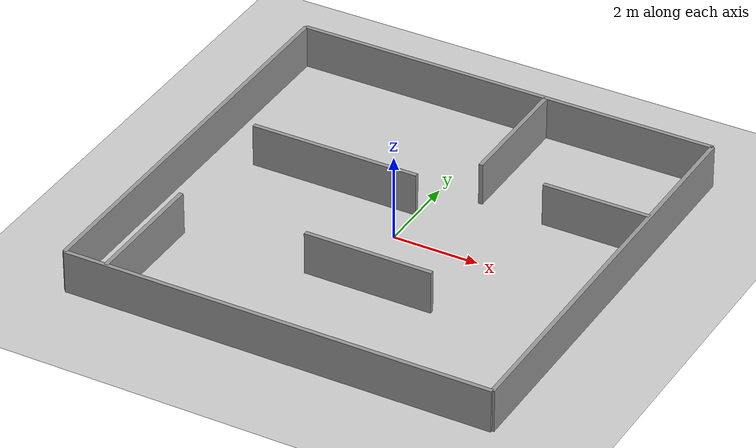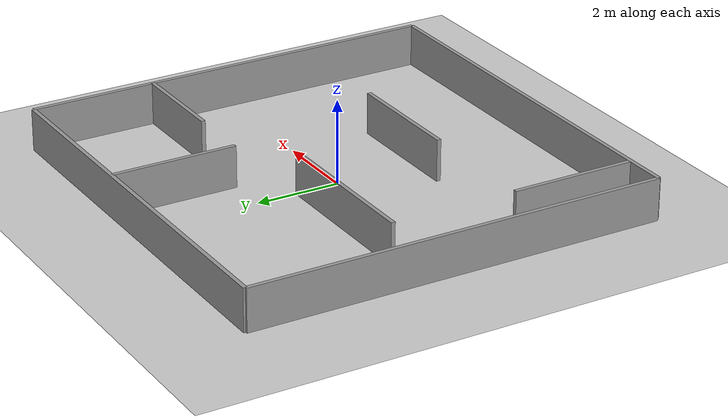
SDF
<sdf version='1.7'>
  <world name='default'>
    <light name='sun' type='directional'>
      <cast_shadows>1</cast_shadows>
      <pose>0 0 10 0 -0 0</pose>
      <diffuse>0.8 0.8 0.8 1</diffuse>
      <specular>0.2 0.2 0.2 1</specular>
      <attenuation>
        <range>1000</range>
        <constant>0.9</constant>
        <linear>0.01</linear>
        <quadratic>0.001</quadratic>
      </attenuation>
      <direction>-0.5 0.1 -0.9</direction>
      <spot>
        <inner_angle>0</inner_angle>
        <outer_angle>0</outer_angle>
        <falloff>0</falloff>
      </spot>
    </light>
    <model name='ground_plane'>
      <static>1</static>
      <link name='link'>
        <collision name='collision'>
          <geometry>
            <plane>
              <normal>0 0 1</normal>
              <size>100 100</size>
            </plane>
          </geometry>
          <surface>
            <contact>
              <collide_bitmask>65535</collide_bitmask>
              <ode/>
            </contact>
            <friction>
              <ode>
                <mu>100</mu>
                <mu2>50</mu2>
              </ode>
              <torsional>
                <ode/>
              </torsional>
            </friction>
            <bounce/>
          </surface>
          <max_contacts>10</max_contacts>
        </collision>
        <visual name='visual'>
          <cast_shadows>0</cast_shadows>
          <geometry>
            <plane>
              <normal>0 0 1</normal>
              <size>100 100</size>
            </plane>
          </geometry>
          <material>
            <script>
              <uri>file://media/materials/scripts/gazebo.material</uri>
              <name>Gazebo/Grey</name>
            </script>
          </material>
        </visual>
        <self_collide>0</self_collide>
        <enable_wind>0</enable_wind>
        <kinematic>0</kinematic>
      </link>
    </model>
    <gravity>0 0 -9.8</gravity>
    <magnetic_field>6e-06 2.3e-05 -4.2e-05</magnetic_field>
    <atmosphere type='adiabatic'/>
    <physics type='ode'>
      <max_step_size>0.001</max_step_size>
      <real_time_factor>1</real_time_factor>
      <real_time_update_rate>1000</real_time_update_rate>
    </physics>
    <scene>
      <ambient>0.4 0.4 0.4 1</ambient>
      <background>0.7 0.7 0.7 1</background>
      <shadows>1</shadows>
    </scene>
    <wind/>
    <spherical_coordinates>
      <surface_model>EARTH_WGS84</surface_model>
      <latitude_deg>0</latitude_deg>
      <longitude_deg>0</longitude_deg>
      <elevation>0</elevation>
      <heading_deg>0</heading_deg>
    </spherical_coordinates>
    <model name='border_bottom'>
      <static>1</static>
      <pose>0 -5 0.5 0 -0 0</pose>
      <link name='link'>
        <inertial>
          <mass>1</mass>
          <inertia>
            <ixx>0.166667</ixx>
            <ixy>0</ixy>
            <ixz>0</ixz>
            <iyy>0.166667</iyy>
            <iyz>0</iyz>
            <izz>0.166667</izz>
          </inertia>
          <pose>0 0 0 0 -0 0</pose>
        </inertial>
        <collision name='collision'>
          <geometry>
            <box>
              <size>10 0.1 1</size>
            </box>
          </geometry>
          <max_contacts>10</max_contacts>
          <surface>
            <contact>
              <ode/>
            </contact>
            <bounce/>
            <friction>
              <torsional>
                <ode/>
              </torsional>
              <ode/>
            </friction>
          </surface>
        </collision>
        <visual name='visual'>
          <geometry>
            <box>
              <size>10 0.1 1</size>
            </box>
          </geometry>
          <material>
            <script>
              <name>Gazebo/Grey</name>
              <uri>file://media/materials/scripts/gazebo.material</uri>
            </script>
          </material>
        </visual>
        <self_collide>0</self_collide>
        <enable_wind>0</enable_wind>
        <kinematic>0</kinematic>
      </link>
    </model>
    <model name='border_left'>
      <static>1</static>
      <pose>-5 0 0.5 0 -0 0</pose>
      <link name='link'>
        <inertial>
          <mass>1</mass>
          <inertia>
            <ixx>0.166667</ixx>
            <ixy>0</ixy>
            <ixz>0</ixz>
            <iyy>0.166667</iyy>
            <iyz>0</iyz>
            <izz>0.166667</izz>
          </inertia>
          <pose>0 0 0 0 -0 0</pose>
        </inertial>
        <collision name='collision'>
          <geometry>
            <box>
              <size>0.1 10 1</size>
            </box>
          </geometry>
          <max_contacts>10</max_contacts>
          <surface>
            <contact>
              <ode/>
            </contact>
            <bounce/>
            <friction>
              <torsional>
                <ode/>
              </torsional>
              <ode/>
            </friction>
          </surface>
        </collision>
        <visual name='visual'>
          <geometry>
            <box>
              <size>0.1 10 1</size>
            </box>
          </geometry>
          <material>
            <script>
              <name>Gazebo/Grey</name>
              <uri>file://media/materials/scripts/gazebo.material</uri>
            </script>
          </material>
        </visual>
        <self_collide>0</self_collide>
        <enable_wind>0</enable_wind>
        <kinematic>0</kinematic>
      </link>
    </model>
    <model name='border_right'>
      <static>1</static>
      <pose>5 0 0.5 0 -0 0</pose>
      <link name='link'>
        <inertial>
          <mass>1</mass>
          <inertia>
            <ixx>0.166667</ixx>
            <ixy>0</ixy>
            <ixz>0</ixz>
            <iyy>0.166667</iyy>
            <iyz>0</iyz>
            <izz>0.166667</izz>
          </inertia>
          <pose>0 0 0 0 -0 0</pose>
        </inertial>
        <collision name='collision'>
          <geometry>
            <box>
              <size>0.1 10 1</size>
            </box>
          </geometry>
          <max_contacts>10</max_contacts>
          <surface>
            <contact>
              <ode/>
            </contact>
            <bounce/>
            <friction>
              <torsional>
                <ode/>
              </torsional>
              <ode/>
            </friction>
          </surface>
        </collision>
        <visual name='visual'>
          <geometry>
            <box>
              <size>0.1 10 1</size>
            </box>
          </geometry>
          <material>
            <script>
              <name>Gazebo/Grey</name>
              <uri>file://media/materials/scripts/gazebo.material</uri>
            </script>
          </material>
        </visual>
        <self_collide>0</self_collide>
        <enable_wind>0</enable_wind>
        <kinematic>0</kinematic>
      </link>
    </model>
    <model name='border_top'>
      <static>1</static>
      <pose>0 5 0.5 0 -0 0</pose>
      <link name='link'>
        <inertial>
          <mass>1</mass>
          <inertia>
            <ixx>0.166667</ixx>
            <ixy>0</ixy>
            <ixz>0</ixz>
            <iyy>0.166667</iyy>
            <iyz>0</iyz>
            <izz>0.166667</izz>
          </inertia>
          <pose>0 0 0 0 -0 0</pose>
        </inertial>
        <collision name='collision'>
          <geometry>
            <box>
              <size>10 0.1 1</size>
            </box>
          </geometry>
          <max_contacts>10</max_contacts>
          <surface>
            <contact>
              <ode/>
            </contact>
            <bounce/>
            <friction>
              <torsional>
                <ode/>
              </torsional>
              <ode/>
            </friction>
          </surface>
        </collision>
        <visual name='visual'>
          <geometry>
            <box>
              <size>10 0.1 1</size>
            </box>
          </geometry>
          <material>
            <script>
              <name>Gazebo/Grey</name>
              <uri>file://media/materials/scripts/gazebo.material</uri>
            </script>
          </material>
        </visual>
        <self_collide>0</self_collide>
        <enable_wind>0</enable_wind>
        <kinematic>0</kinematic>
      </link>
    </model>
    <model name='wall_01'>
      <static>1</static>
      <pose>1 3.5 0.5 0 -0 0</pose>
      <link name='link'>
        <inertial>
          <mass>1</mass>
          <inertia>
            <ixx>0.166667</ixx>
            <ixy>0</ixy>
            <ixz>0</ixz>
            <iyy>0.166667</iyy>
            <iyz>0</iyz>
            <izz>0.166667</izz>
          </inertia>
          <pose>0 0 0 0 -0 0</pose>
        </inertial>
        <collision name='collision'>
          <geometry>
            <box>
              <size>0.1 3 1</size>
            </box>
          </geometry>
          <max_contacts>10</max_contacts>
          <surface>
            <contact>
              <ode/>
            </contact>
            <bounce/>
            <friction>
              <torsional>
                <ode/>
              </torsional>
              <ode/>
            </friction>
          </surface>
        </collision>
        <visual name='visual'>
          <geometry>
            <box>
              <size>0.1 3 1</size>
            </box>
          </geometry>
          <material>
            <script>
              <name>Gazebo/Grey</name>
              <uri>file://media/materials/scripts/gazebo.material</uri>
            </script>
          </material>
        </visual>
        <self_collide>0</self_collide>
        <enable_wind>0</enable_wind>
        <kinematic>0</kinematic>
      </link>
    </model>
    <model name='wall_02'>
      <static>1</static>
      <pose>3.75 2 0.5 0 -0 0</pose>
      <link name='link'>
        <inertial>
          <mass>1</mass>
          <inertia>
            <ixx>0.166667</ixx>
            <ixy>0</ixy>
            <ixz>0</ixz>
            <iyy>0.166667</iyy>
            <iyz>0</iyz>
            <izz>0.166667</izz>
          </inertia>
          <pose>0 0 0 0 -0 0</pose>
        </inertial>
        <collision name='collision'>
          <geometry>
            <box>
              <size>2.5 0.1 1</size>
            </box>
          </geometry>
          <max_contacts>10</max_contacts>
          <surface>
            <contact>
              <ode/>
            </contact>
            <bounce/>
            <friction>
              <torsional>
                <ode/>
              </torsional>
              <ode/>
            </friction>
          </surface>
        </collision>
        <visual name='visual'>
          <geometry>
            <box>
              <size>2.5 0.1 1</size>
            </box>
          </geometry>
          <material>
            <script>
              <name>Gazebo/Grey</name>
              <uri>file://media/materials/scripts/gazebo.material</uri>
            </script>
          </material>
        </visual>
        <self_collide>0</self_collide>
        <enable_wind>0</enable_wind>
        <kinematic>0</kinematic>
      </link>
    </model>
    <model name='wall_03'>
      <static>1</static>
      <pose>0.5 -2 0.5 0 -0 0</pose>
      <link name='link'>
        <inertial>
          <mass>1</mass>
          <inertia>
            <ixx>0.166667</ixx>
            <ixy>0</ixy>
            <ixz>0</ixz>
            <iyy>0.166667</iyy>
            <iyz>0</iyz>
            <izz>0.166667</izz>
          </inertia>
          <pose>0 0 0 0 -0 0</pose>
        </inertial>
        <collision name='collision'>
          <geometry>
            <box>
              <size>3 0.1 1</size>
            </box>
          </geometry>
          <max_contacts>10</max_contacts>
          <surface>
            <contact>
              <ode/>
            </contact>
            <bounce/>
            <friction>
              <torsional>
                <ode/>
              </torsional>
              <ode/>
            </friction>
          </surface>
        </collision>
        <visual name='visual'>
          <geometry>
            <box>
              <size>3 0.1 1</size>
            </box>
          </geometry>
          <material>
            <script>
              <name>Gazebo/Grey</name>
              <uri>file://media/materials/scripts/gazebo.material</uri>
            </script>
          </material>
        </visual>
        <self_collide>0</self_collide>
        <enable_wind>0</enable_wind>
        <kinematic>0</kinematic>
      </link>
    </model>
    <model name='wall_04'>
      <static>1</static>
      <pose>-2 1 0.5 0 -0 0</pose>
      <link name='link'>
        <inertial>
          <mass>1</mass>
          <inertia>
            <ixx>0.166667</ixx>
            <ixy>0</ixy>
            <ixz>0</ixz>
            <iyy>0.166667</iyy>
            <iyz>0</iyz>
            <izz>0.166667</izz>
          </inertia>
          <pose>0 0 0 0 -0 0</pose>
        </inertial>
        <collision name='collision'>
          <geometry>
            <box>
              <size>4 0.1 1</size>
            </box>
          </geometry>
          <max_contacts>10</max_contacts>
          <surface>
            <contact>
              <ode/>
            </contact>
            <bounce/>
            <friction>
              <torsional>
                <ode/>
              </torsional>
              <ode/>
            </friction>
          </surface>
        </collision>
        <visual name='visual'>
          <geometry>
            <box>
              <size>4 0.1 1</size>
            </box>
          </geometry>
          <material>
            <script>
              <name>Gazebo/Grey</name>
              <uri>file://media/materials/scripts/gazebo.material</uri>
            </script>
          </material>
        </visual>
        <self_collide>0</self_collide>
        <enable_wind>0</enable_wind>
        <kinematic>0</kinematic>
      </link>
    </model>
    <model name='wall_05'>
      <static>1</static>
      <pose>-4 -3.5 0.5 0 -0 0</pose>
      <link name='link'>
        <inertial>
          <mass>1</mass>
          <inertia>
            <ixx>0.166667</ixx>
            <ixy>0</ixy>
            <ixz>0</ixz>
            <iyy>0.166667</iyy>
            <iyz>0</iyz>
            <izz>0.166667</izz>
          </inertia>
          <pose>0 0 0 0 -0 0</pose>
        </inertial>
        <collision name='collision'>
          <geometry>
            <box>
              <size>0.1 3 1</size>
            </box>
          </geometry>
          <max_contacts>10</max_contacts>
          <surface>
            <contact>
              <ode/>
            </contact>
            <bounce/>
            <friction>
              <torsional>
                <ode/>
              </torsional>
              <ode/>
            </friction>
          </surface>
        </collision>
        <visual name='visual'>
          <geometry>
            <box>
              <size>0.1 3 1</size>
            </box>
          </geometry>
          <material>
            <script>
              <name>Gazebo/Grey</name>
              <uri>file://media/materials/scripts/gazebo.material</uri>
            </script>
          </material>
        </visual>
        <self_collide>0</self_collide>
        <enable_wind>0</enable_wind>
        <kinematic>0</kinematic>
      </link>
    </model>
    <gui fullscreen='0'>
      <camera name='user_camera'>
        <pose>5 -5 2 0 0.275643 2.35619</pose>
        <view_controller>orbit</view_controller>
        <projection_type>perspective</projection_type>
      </camera>
    </gui>
  </world>
</sdf>
